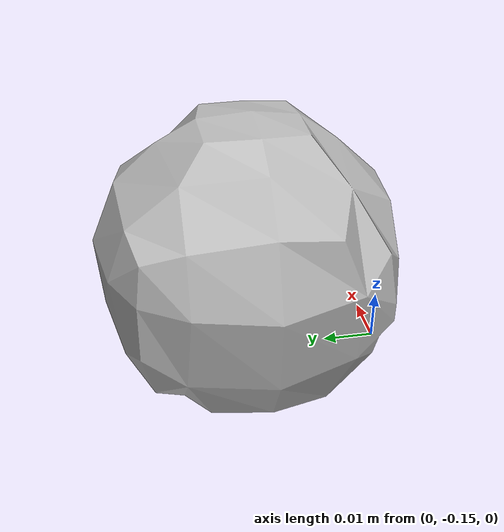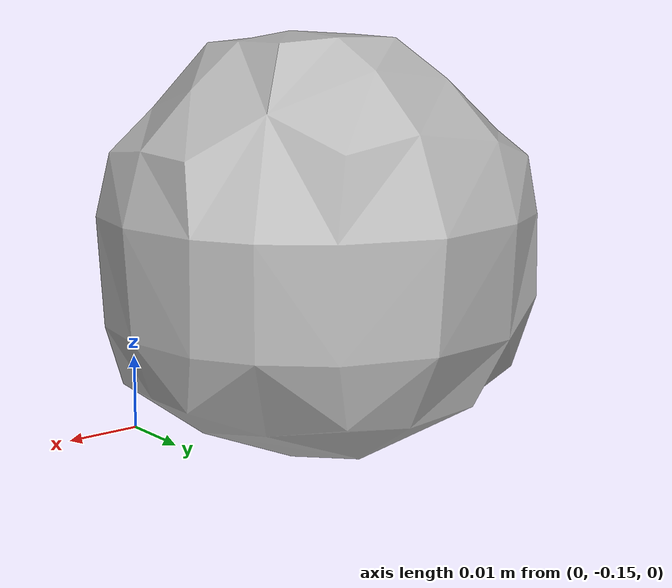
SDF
<?xml version='1.0'?>
<sdf version="1.4">
  <model name="racquetball">
    <static>false</static>
    <link name="link">
      <inertial>
        <pose>-0.009071044745210352 -0.12221649947970037 0.027571138362930195 1.0005117249207889 -1.1435365117103407 -2.4792474679428795</pose>
        <mass>9.106106830055334e-05</mass>
        <inertia>
          <ixx>2.8447206279737716e-08</ixx>
          <ixy>5.508452406312775e-25</ixy>
          <ixz>-2.290493547830896e-24</ixz>
          <iyy>2.8427175241761365e-08</iyy>
          <iyz>-8.1849317855651595e-25</iyz>
          <izz>2.8244091340000326e-08</izz>
        </inertia>
      </inertial>
      <collision name="collision">
        <geometry>
          <!-- Use a downsampled mesh for collisions -->
          <mesh>
            <uri>model://057_racquetball/google_16k/low_poly.obj</uri>
	        </mesh>
        </geometry>
        <surface>
        <friction>
          <ode>
            <mu>100000</mu>
            <mu2>100000</mu2>
          </ode>
        </friction>
        <contact>
          <ode>
            <kp>10000000.0</kp>
            <kd>1.0</kd>
            <max_vel>1000</max_vel>
            <min_depth>0.001</min_depth>
          </ode>
        </contact>
        </surface>
      </collision>
      <visual name="visual">
        <geometry>
          <mesh>
            <uri>model://057_racquetball/google_16k/textured.obj</uri>
	        </mesh>
        </geometry>
        <material>
          <script>
            <uri>model://057_racquetball/racquetball.material</uri>
            <name>racquetball</name>
          </script>
        </material>
      </visual>
    </link>
  </model>
</sdf>
